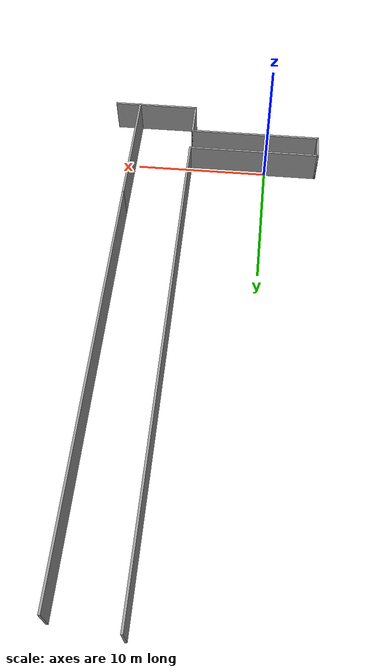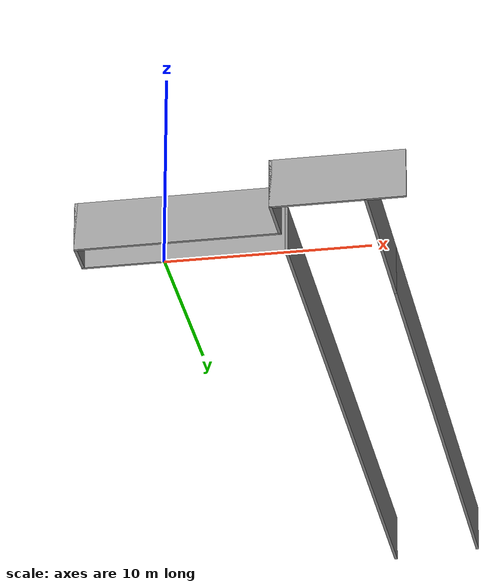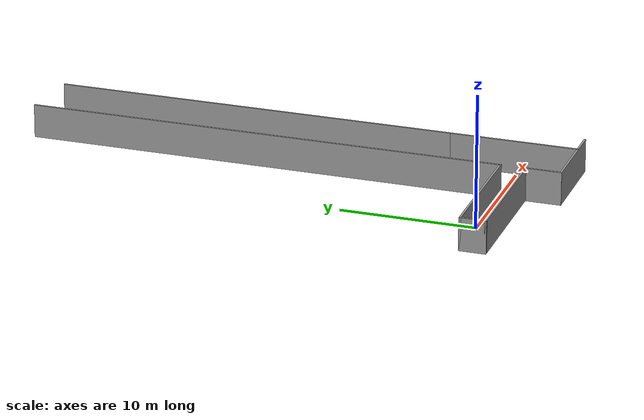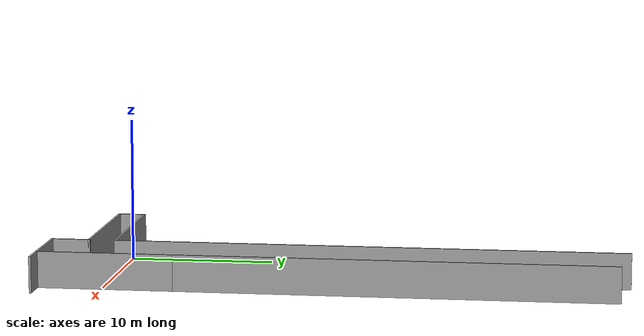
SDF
<?xml version='1.0'?>
<sdf version='1.7'>
  <model name='collage.world'>
    <pose>4.13734 15.4515 0 0 -0 0</pose>
    <link name='Wall_10'>
      <collision name='Wall_10_Collision'>
        <geometry>
          <box>
            <size>2 0.15 2.5</size>
          </box>
        </geometry>
        <pose>0 0 1.25 0 -0 0</pose>
      </collision>
      <visual name='Wall_10_Visual'>
        <pose>0 0 1.25 0 -0 0</pose>
        <geometry>
          <box>
            <size>2 0.15 2.5</size>
          </box>
        </geometry>
        <material>
          <script>
            <uri>file://media/materials/scripts/gazebo.material</uri>
            <name>Gazebo/Grey</name>
          </script>
          <ambient>1 1 1 1</ambient>
        </material>
        <meta>
          <layer>0</layer>
        </meta>
      </visual>
      <pose>-8.1 -16.375 0 0 -0 -1.5708</pose>
    </link>
    <link name='Wall_11'>
      <collision name='Wall_11_Collision'>
        <geometry>
          <box>
            <size>10 0.15 2.5</size>
          </box>
        </geometry>
        <pose>0 0 1.25 0 -0 0</pose>
      </collision>
      <visual name='Wall_11_Visual'>
        <pose>0 0 1.25 0 -0 0</pose>
        <geometry>
          <box>
            <size>10 0.15 2.5</size>
          </box>
        </geometry>
        <material>
          <script>
            <uri>file://media/materials/scripts/gazebo.material</uri>
            <name>Gazebo/Grey</name>
          </script>
          <ambient>1 1 1 1</ambient>
        </material>
        <meta>
          <layer>0</layer>
        </meta>
      </visual>
      <pose>-3.175 -17.3 0 0 -0 0</pose>
    </link>
    <link name='Wall_13'>
      <collision name='Wall_13_Collision'>
        <geometry>
          <box>
            <size>10 0.15 2.5</size>
          </box>
        </geometry>
        <pose>0 0 1.25 0 -0 0</pose>
      </collision>
      <visual name='Wall_13_Visual'>
        <pose>0 0 1.25 0 -0 0</pose>
        <geometry>
          <box>
            <size>10 0.15 2.5</size>
          </box>
        </geometry>
        <material>
          <script>
            <uri>file://media/materials/scripts/gazebo.material</uri>
            <name>Gazebo/Grey</name>
          </script>
          <ambient>1 1 1 1</ambient>
        </material>
        <meta>
          <layer>0</layer>
        </meta>
      </visual>
      <pose>-3.175 -15.45 0 0 -0 0</pose>
    </link>
    <link name='Wall_14'>
      <collision name='Wall_14_Collision'>
        <geometry>
          <box>
            <size>0.15 0.15 2.5</size>
          </box>
        </geometry>
        <pose>0 0 1.25 0 -0 0</pose>
      </collision>
      <visual name='Wall_14_Visual'>
        <pose>0 0 1.25 0 -0 0</pose>
        <geometry>
          <box>
            <size>0.15 0.15 2.5</size>
          </box>
        </geometry>
        <material>
          <script>
            <uri>file://media/materials/scripts/gazebo.material</uri>
            <name>Gazebo/Grey</name>
          </script>
          <ambient>1 1 1 1</ambient>
        </material>
        <meta>
          <layer>0</layer>
        </meta>
      </visual>
      <pose>1.75 -15.45 0 0 -0 0</pose>
    </link>
    <link name='Wall_16'>
      <collision name='Wall_16_Collision'>
        <geometry>
          <box>
            <size>2.75 0.15 2.5</size>
          </box>
        </geometry>
        <pose>0 0 1.25 0 -0 0</pose>
      </collision>
      <visual name='Wall_16_Visual'>
        <pose>0 0 1.25 0 -0 0</pose>
        <geometry>
          <box>
            <size>2.75 0.15 2.5</size>
          </box>
        </geometry>
        <material>
          <script>
            <uri>file://media/materials/scripts/gazebo.material</uri>
            <name>Gazebo/Grey</name>
          </script>
          <ambient>1 1 1 1</ambient>
        </material>
        <meta>
          <layer>0</layer>
        </meta>
      </visual>
      <pose>1.75 -18.6 0 0 -0 -1.5708</pose>
    </link>
    <link name='Wall_17'>
      <collision name='Wall_17_Collision'>
        <geometry>
          <box>
            <size>6.5 0.15 2.5</size>
          </box>
        </geometry>
        <pose>0 0 1.25 0 -0 0</pose>
      </collision>
      <visual name='Wall_17_Visual'>
        <pose>0 0 1.25 0 -0 0</pose>
        <geometry>
          <box>
            <size>6.5 0.15 2.5</size>
          </box>
        </geometry>
        <material>
          <script>
            <uri>file://media/materials/scripts/gazebo.material</uri>
            <name>Gazebo/Grey</name>
          </script>
          <ambient>1 1 1 1</ambient>
        </material>
        <meta>
          <layer>0</layer>
        </meta>
      </visual>
      <pose>4.925 -19.9 0 0 -0 0</pose>
    </link>
    <link name='Wall_19'>
      <collision name='Wall_19_Collision'>
        <geometry>
          <box>
            <size>9.5 0.15 2.5</size>
          </box>
        </geometry>
        <pose>0 0 1.25 0 -0 0</pose>
      </collision>
      <visual name='Wall_19_Visual'>
        <pose>0 0 1.25 0 -0 0</pose>
        <geometry>
          <box>
            <size>9.5 0.15 2.5</size>
          </box>
        </geometry>
        <material>
          <script>
            <uri>file://media/materials/scripts/gazebo.material</uri>
            <name>Gazebo/Grey</name>
          </script>
          <ambient>1 1 1 1</ambient>
        </material>
        <meta>
          <layer>0</layer>
        </meta>
      </visual>
      <pose>6.24893 -15.1823 0 0 -0 1.5708</pose>
    </link>
    <link name='Wall_21'>
      <collision name='Wall_21_Collision'>
        <geometry>
          <box>
            <size>35.5 0.15 2.5</size>
          </box>
        </geometry>
        <pose>0 0 1.25 0 -0 0</pose>
      </collision>
      <visual name='Wall_21_Visual'>
        <pose>0 0 1.25 0 -0 0</pose>
        <geometry>
          <box>
            <size>35.5 0.15 2.5</size>
          </box>
        </geometry>
        <material>
          <script>
            <uri>file://media/materials/scripts/gazebo.material</uri>
            <name>Gazebo/Grey</name>
          </script>
          <ambient>1 1 1 1</ambient>
        </material>
        <meta>
          <layer>0</layer>
        </meta>
      </visual>
      <pose>1.75 2.225 0 0 -0 1.5708</pose>
    </link>
    <link name='Wall_24'>
      <collision name='Wall_24_Collision'>
        <geometry>
          <box>
            <size>30 0.15 2.5</size>
          </box>
        </geometry>
        <pose>0 0 1.25 0 -0 0</pose>
      </collision>
      <visual name='Wall_24_Visual'>
        <pose>0 0 1.25 0 -0 0</pose>
        <geometry>
          <box>
            <size>30 0.15 2.5</size>
          </box>
        </geometry>
        <material>
          <script>
            <uri>file://media/materials/scripts/gazebo.material</uri>
            <name>Gazebo/Grey</name>
          </script>
          <ambient>1 1 1 1</ambient>
        </material>
        <meta>
          <layer>0</layer>
        </meta>
      </visual>
      <pose>6.24893 4.41767 0 0 -0 1.5708</pose>
    </link>
    <static>1</static>
  </model>
</sdf>
